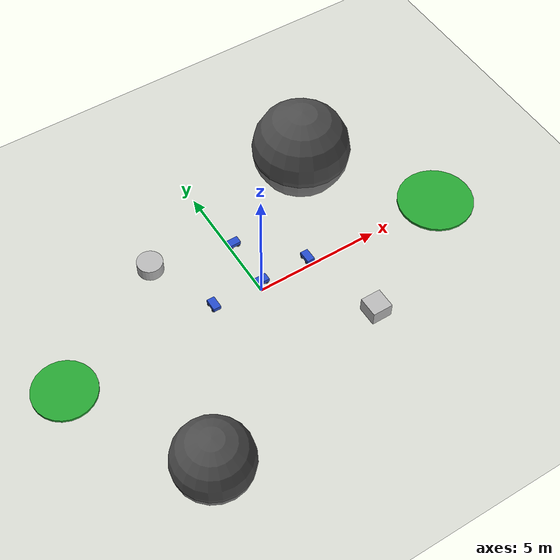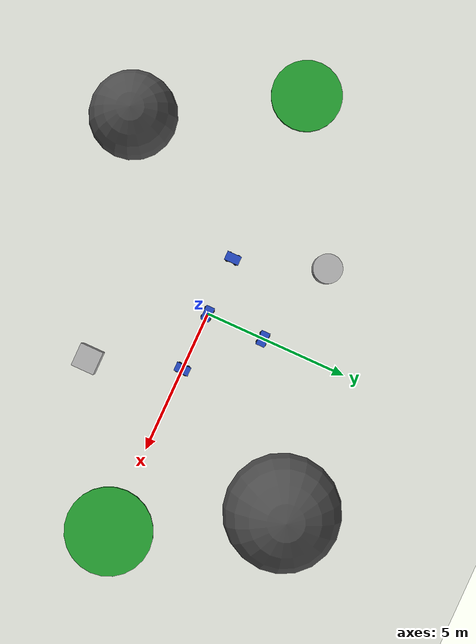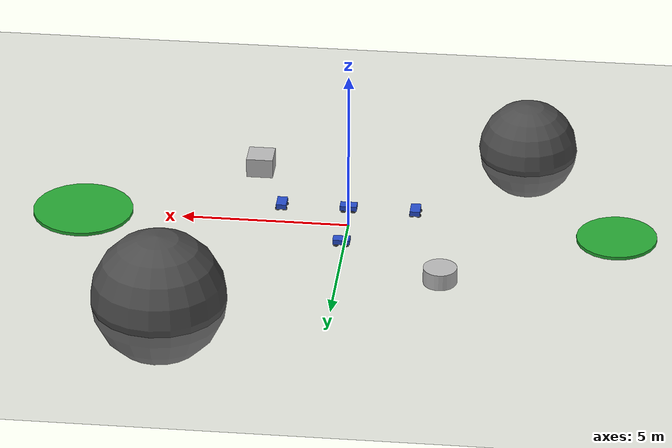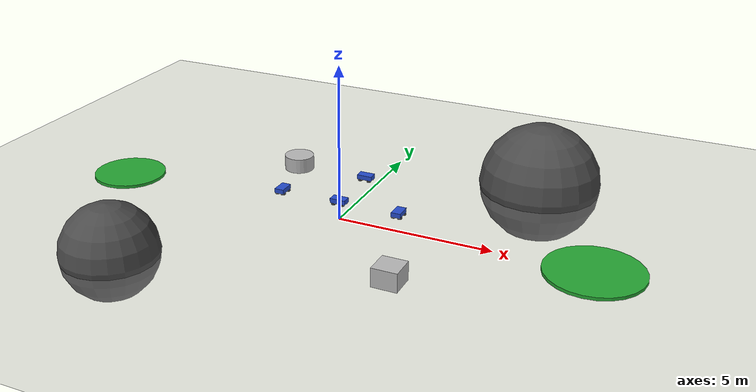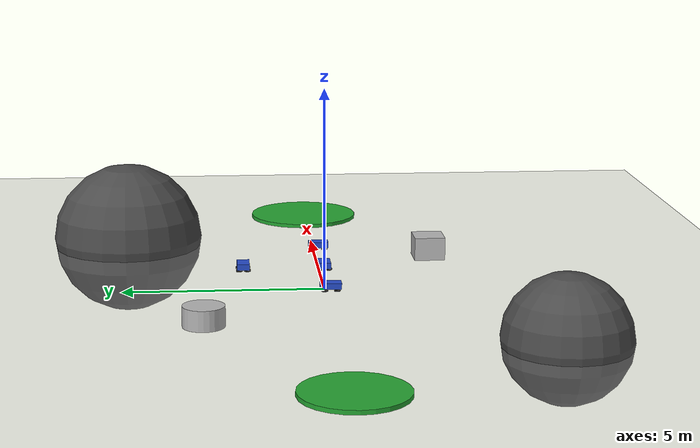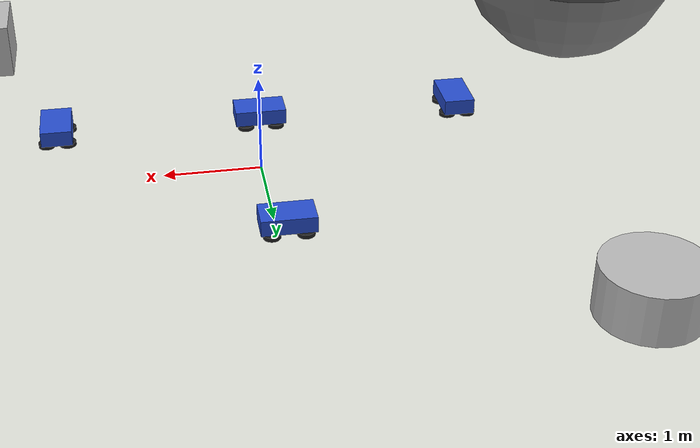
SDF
<?xml version="1.0"?>
<sdf version="1.7">
  <world name="moon_ree_exploration">

    <!-- Physics avec moteur ODE -->
    <physics name="default_physics" type="ode">
      <max_step_size>0.01</max_step_size>
      <real_time_factor>1.0</real_time_factor>
      <real_time_update_rate>1000</real_time_update_rate>
      <gravity>0.0 0.0 -1.622</gravity>
    </physics>

    <!-- Scene -->
    <scene>
      <ambient>0.1 0.1 0.1 1.0</ambient>
      <background>0.05 0.05 0.05 1.0</background>
      <shadows>true</shadows>
      <grid>false</grid>
    </scene>

    <!-- Éclairage directionnel (soleil) -->
    <light type="directional" name="sun">
      <cast_shadows>true</cast_shadows>
      <pose>0 0 50 0 0 0</pose>
      <diffuse>0.8 0.8 0.8 1</diffuse>
      <specular>0.2 0.2 0.2 1</specular>
      <attenuation>
        <range>1000</range>
        <constant>0.9</constant>
        <linear>0.01</linear>
        <quadratic>0.001</quadratic>
      </attenuation>
      <direction>-0.5 0.1 -0.9</direction>
    </light>

    <!-- Sol lunaire -->
    <model name="lunar_terrain">
      <static>true</static>
      <link name="terrain_link">
        <collision name="collision">
          <geometry>
            <plane>
              <normal>0 0 1</normal>
              <size>50 50</size>
            </plane>
          </geometry>
          <surface>
            <friction>
              <ode>
                <mu>100</mu>
                <mu2>50</mu2>
              </ode>
            </friction>
          </surface>
        </collision>
        <visual name="visual">
          <geometry>
            <plane>
              <normal>0 0 1</normal>
              <size>50 50</size>
            </plane>
          </geometry>
          <material>
            <script>
              <uri>file://media/materials/scripts/gazebo.material</uri>
              <name>Gazebo/Grey</name>
            </script>
          </material>
        </visual>
      </link>
    </model>

    <!-- Cratères procéduraux -->
    <model name="crater_1">
      <pose>5 5 0.2 0 0 0</pose>
      <static>true</static>
      <link name="link">
        <collision name="collision">
          <geometry>
            <sphere>
              <radius>2</radius>
            </sphere>
          </geometry>
        </collision>
        <visual name="visual">
          <geometry>
            <sphere>
              <radius>2</radius>
            </sphere>
          </geometry>
          <material>
            <script>
              <uri>file://media/materials/scripts/gazebo.material</uri>
              <name>Gazebo/DarkGrey</name>
            </script>
          </material>
        </visual>
      </link>
    </model>

    <model name="crater_2">
      <pose>-5 -5 0.15 0 0 0</pose>
      <static>true</static>
      <link name="link">
        <collision name="collision">
          <geometry>
            <sphere>
              <radius>1.5</radius>
            </sphere>
          </geometry>
        </collision>
        <visual name="visual">
          <geometry>
            <sphere>
              <radius>1.5</radius>
            </sphere>
          </geometry>
          <material>
            <script>
              <uri>file://media/materials/scripts/gazebo.material</uri>
              <name>Gazebo/DarkGrey</name>
            </script>
          </material>
        </visual>
      </link>
    </model>

    <!-- Rochers lunaires -->
    <model name="rock_1">
      <pose>3 -3 0.3 0 0 0</pose>
      <static>true</static>
      <link name="link">
        <collision name="collision">
          <geometry>
            <box>
              <size>0.8 0.8 0.6</size>
            </box>
          </geometry>
        </collision>
        <visual name="visual">
          <geometry>
            <box>
              <size>0.8 0.8 0.6</size>
            </box>
          </geometry>
          <material>
            <script>
              <uri>file://media/materials/scripts/gazebo.material</uri>
              <name>Gazebo/Stone</name>
            </script>
          </material>
        </visual>
      </link>
    </model>

    <model name="rock_2">
      <pose>-3 3 0.25 0 0 1.57</pose>
      <static>true</static>
      <link name="link">
        <collision name="collision">
          <geometry>
            <cylinder>
              <radius>0.5</radius>
              <length>0.5</length>
            </cylinder>
          </geometry>
        </collision>
        <visual name="visual">
          <geometry>
            <cylinder>
              <radius>0.5</radius>
              <length>0.5</length>
            </cylinder>
          </geometry>
          <material>
            <script>
              <uri>file://media/materials/scripts/gazebo.material</uri>
              <name>Gazebo/Stone</name>
            </script>
          </material>
        </visual>
      </link>
    </model>

    <!-- Zones de minerais REE -->
    <model name="ree_zone_1">
      <pose>8 0 0.05 0 0 0</pose>
      <static>true</static>
      <link name="link">
        <visual name="visual">
          <geometry>
            <cylinder>
              <radius>1.5</radius>
              <length>0.1</length>
            </cylinder>
          </geometry>
          <material>
            <script>
              <uri>file://media/materials/scripts/gazebo.material</uri>
              <name>Gazebo/Green</name>
            </script>
          </material>
        </visual>
      </link>
    </model>

    <model name="ree_zone_2">
      <pose>-8 0 0.05 0 0 0</pose>
      <static>true</static>
      <link name="link">
        <visual name="visual">
          <geometry>
            <cylinder>
              <radius>1.2</radius>
              <length>0.1</length>
            </cylinder>
          </geometry>
          <material>
            <script>
              <uri>file://media/materials/scripts/gazebo.material</uri>
              <name>Gazebo/Green</name>
            </script>
          </material>
        </visual>
      </link>
    </model>

    <!-- Inclure les robots directement dans le monde -->
    <include>
      <uri>model://ree_explorer_robot</uri>
      <name>ree_explorer_1</name>
      <pose>0 0 0.5 0 0 0</pose>
    </include>

    <include>
      <uri>model://ree_explorer_robot</uri>
      <name>ree_explorer_2</name>
      <pose>2 0 0.5 0 0 1.57</pose>
    </include>

    <include>
      <uri>model://ree_explorer_robot</uri>
      <name>ree_explorer_3</name>
      <pose>-2 0 0.5 0 0 -1.57</pose>
    </include>

    <include>
      <uri>model://ree_explorer_robot</uri>
      <name>ree_explorer_4</name>
      <pose>0 2 0.5 0 0 3.14</pose>
    </include>

  </world>
</sdf>

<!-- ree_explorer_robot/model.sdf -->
<sdf version="1.7">
  <model name="ree_explorer_robot">

    <!-- Châssis principal -->
    <link name="chassis">
      <pose>0 0 0.15 0 0 0</pose>
      <collision name="collision">
        <geometry>
          <box>
            <size>0.5 0.3 0.15</size>
          </box>
        </geometry>
        <surface>
          <friction>
            <ode>
              <mu>100</mu>
              <mu2>50</mu2>
            </ode>
          </friction>
        </surface>
      </collision>
      <visual name="visual">
        <geometry>
          <box>
            <size>0.5 0.3 0.15</size>
          </box>
        </geometry>
        <material>
          <script>
            <uri>file://media/materials/scripts/gazebo.material</uri>
            <name>Gazebo/Blue</name>
          </script>
        </material>
      </visual>

      <!-- Capteur IMU -->
      <sensor type="imu" name="imu_sensor">
        <always_on>true</always_on>
        <update_rate>100</update_rate>
        <imu>
          <noise>
            <type>gaussian</type>
            <rate>
              <mean>0.0</mean>
              <stddev>0.0002</stddev>
            </rate>
          </noise>
        </imu>
      </sensor>
    </link>

    <!-- Roues -->
    <link name="left_wheel">
      <pose>0.15 0.1 0.05 0 0 0</pose>
      <collision name="collision">
        <geometry>
          <cylinder>
            <radius>0.08</radius>
            <length>0.04</length>
          </cylinder>
        </geometry>
        <surface>
          <friction>
            <ode>
              <mu>100</mu>
              <mu2>50</mu2>
            </ode>
          </friction>
        </surface>
      </collision>
      <visual name="visual">
        <geometry>
          <cylinder>
            <radius>0.08</radius>
            <length>0.04</length>
          </cylinder>
        </geometry>
        <material>
          <script>
            <uri>file://media/materials/scripts/gazebo.material</uri>
            <name>Gazebo/Black</name>
          </script>
        </material>
      </visual>
    </link>

    <link name="right_wheel">
      <pose>0.15 -0.1 0.05 0 0 0</pose>
      <collision name="collision">
        <geometry>
          <cylinder>
            <radius>0.08</radius>
            <length>0.04</length>
          </cylinder>
        </geometry>
        <surface>
          <friction>
            <ode>
              <mu>100</mu>
              <mu2>50</mu2>
            </ode>
          </friction>
        </surface>
      </collision>
      <visual name="visual">
        <geometry>
          <cylinder>
            <radius>0.08</radius>
            <length>0.04</length>
          </cylinder>
        </geometry>
        <material>
          <script>
            <uri>file://media/materials/scripts/gazebo.material</uri>
            <name>Gazebo/Black</name>
          </script>
        </material>
      </visual>
    </link>

    <link name="left_back_wheel">
      <pose>-0.15 0.1 0.05 0 0 0</pose>
      <collision name="collision">
        <geometry>
          <cylinder>
            <radius>0.08</radius>
            <length>0.04</length>
          </cylinder>
        </geometry>
        <surface>
          <friction>
            <ode>
              <mu>100</mu>
              <mu2>50</mu2>
            </ode>
          </friction>
        </surface>
      </collision>
      <visual name="visual">
        <geometry>
          <cylinder>
            <radius>0.08</radius>
            <length>0.04</length>
          </cylinder>
        </geometry>
        <material>
          <script>
            <uri>file://media/materials/scripts/gazebo.material</uri>
            <name>Gazebo/Black</name>
          </script>
        </material>
      </visual>
    </link>

    <link name="right_back_wheel">
      <pose>-0.15 -0.1 0.05 0 0 0</pose>
      <collision name="collision">
        <geometry>
          <cylinder>
            <radius>0.08</radius>
            <length>0.04</length>
          </cylinder>
        </geometry>
        <surface>
          <friction>
            <ode>
              <mu>100</mu>
              <mu2>50</mu2>
            </ode>
          </friction>
        </surface>
      </collision>
      <visual name="visual">
        <geometry>
          <cylinder>
            <radius>0.08</radius>
            <length>0.04</length>
          </cylinder>
        </geometry>
        <material>
          <script>
            <uri>file://media/materials/scripts/gazebo.material</uri>
            <name>Gazebo/Black</name>
          </script>
        </material>
      </visual>
    </link>

    <!-- Joints -->
    <joint type="revolute" name="left_wheel_joint">
      <parent>chassis</parent>
      <child>left_wheel</child>
      <axis>
        <xyz>0 1 0</xyz>
        <limit>
          <lower>-1e+16</lower>
          <upper>1e+16</upper>
        </limit>
      </axis>
    </joint>

    <joint type="revolute" name="right_wheel_joint">
      <parent>chassis</parent>
      <child>right_wheel</child>
      <axis>
        <xyz>0 1 0</xyz>
        <limit>
          <lower>-1e+16</lower>
          <upper>1e+16</upper>
        </limit>
      </axis>
    </joint>

    <joint type="revolute" name="left_back_wheel_joint">
      <parent>chassis</parent>
      <child>left_back_wheel</child>
      <axis>
        <xyz>0 1 0</xyz>
        <limit>
          <lower>-1e+16</lower>
          <upper>1e+16</upper>
        </limit>
      </axis>
    </joint>

    <joint type="revolute" name="right_back_wheel_joint">
      <parent>chassis</parent>
      <child>right_back_wheel</child>
      <axis>
        <xyz>0 1 0</xyz>
        <limit>
          <lower>-1e+16</lower>
          <upper>1e+16</upper>
        </limit>
      </axis>
    </joint>

    <!-- Plugin de contrôle différentiel Gazebo Classic -->
    <plugin name="differential_drive" filename="libgazebo_ros_diff_drive.so">
      <command_topic>cmd_vel</command_topic>
      <odometry_topic>odom</odometry_topic>
      <odometry_frame>odom</odometry_frame>
      <robot_base_frame>chassis</robot_base_frame>
      <publish_odom>true</publish_odom>
      <publish_odom_tf>true</publish_odom_tf>
      <publish_wheel_tf>true</publish_wheel_tf>
      <legacy_mode>false</legacy_mode>
      <update_rate>30</update_rate>
      <left_joint>left_wheel_joint</left_joint>
      <right_joint>right_wheel_joint</right_joint>
      <wheel_separation>0.2</wheel_separation>
      <wheel_diameter>0.16</wheel_diameter>
      <wheel_acceleration>0.5</wheel_acceleration>
      <wheel_torque>10</wheel_torque>
      <odometry_source>world</odometry_source>
    </plugin>

  </model>
</sdf>
